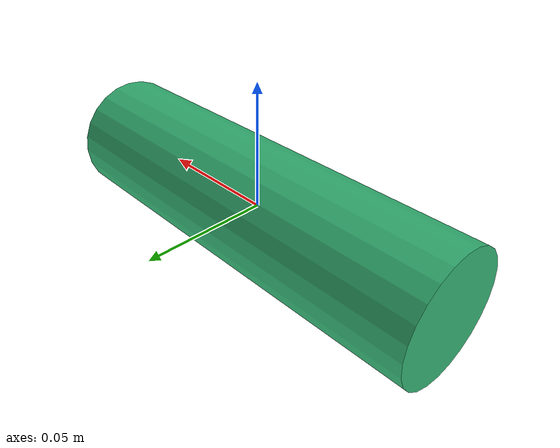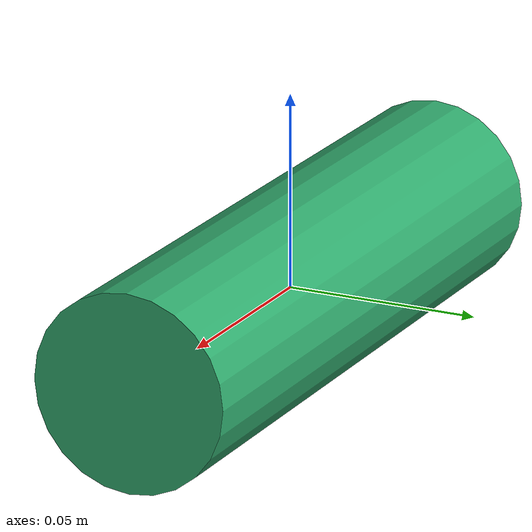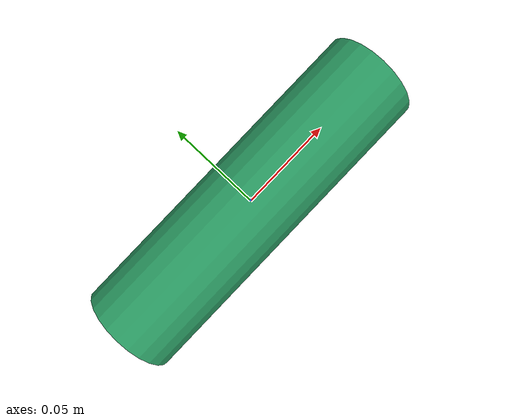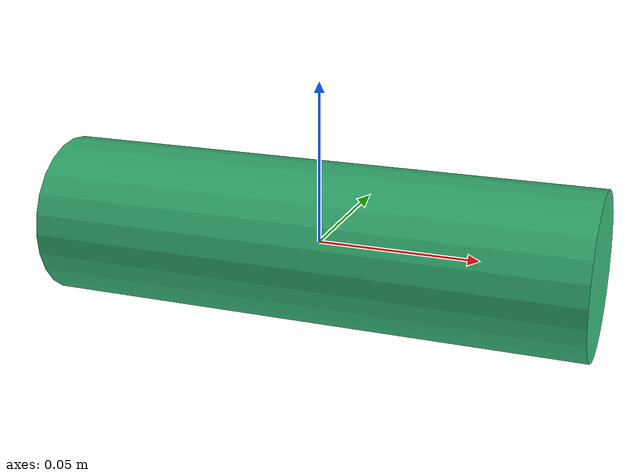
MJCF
<mujoco model="cylinder">
  <worldbody>
    <body name="grasp_object" pos="0 0 0" quat="0.70710677 0 0.70710677 0">
      <freejoint name="grasp_object_freejoint"/>
      <geom
        name="grasp_object_geom"
        type="cylinder"
        size="0.025 0.085"
        density="400"
        friction="0.2 0.02 0.002"
        rgba="0.2 0.7 0.45 1"/>
      <site name="grasp_anchor" pos="0 0 0" size="0.004" rgba="1 0.2 0.2 1"/>
    </body>
  </worldbody>
</mujoco>
